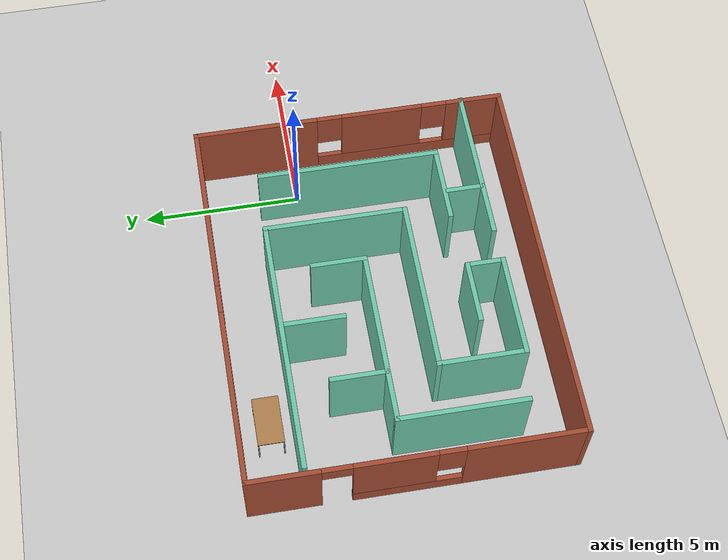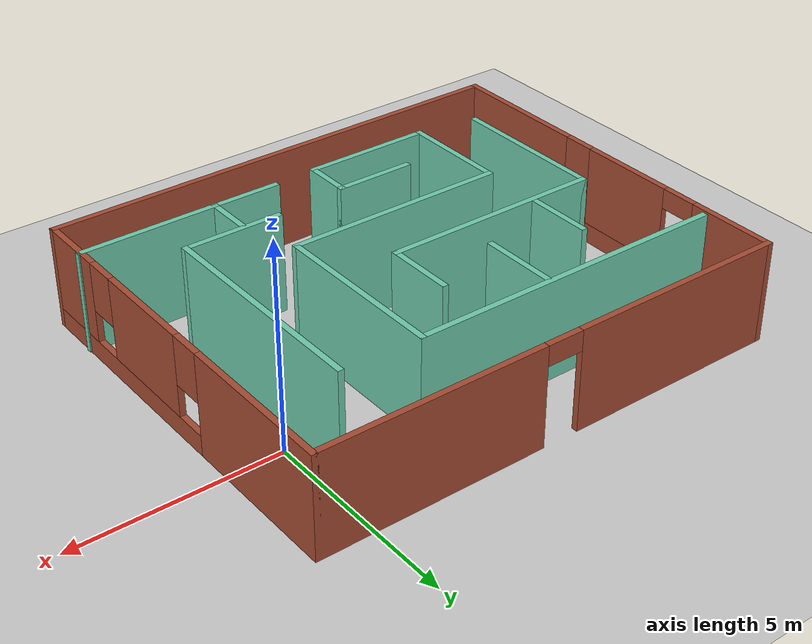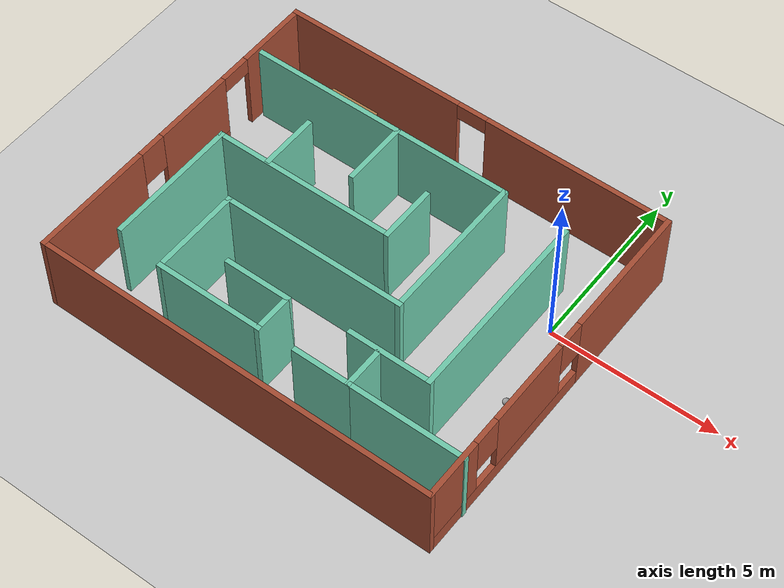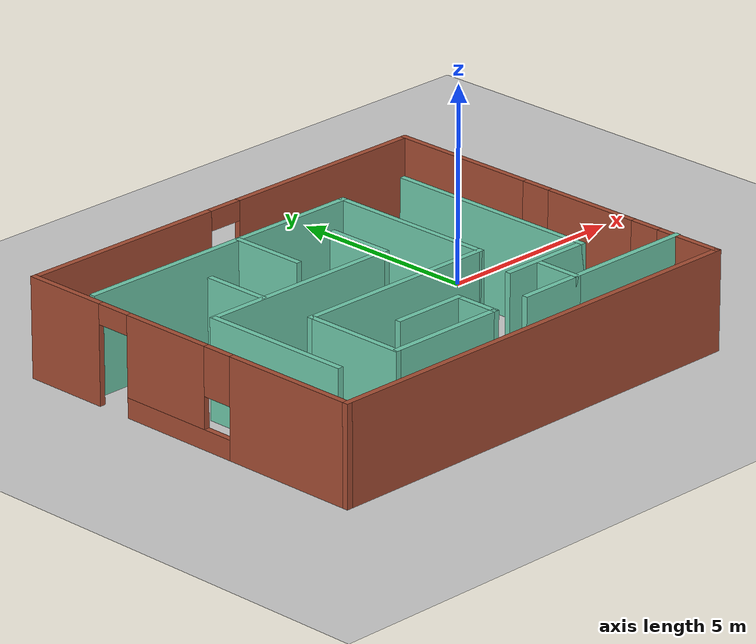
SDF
<sdf version="1.6">
 <world name="default">
  <light name="sun" type="directional">
   <pose>0 0 10 0 -0 0</pose>
   <diffuse>0.8 0.8 0.8 1</diffuse>
   <specular>0.2 0.2 0.2 1</specular>
   <attenuation>
    <range>1000</range>
    <constant>0.9</constant>
    <linear>0.01</linear>
    <quadratic>0.001</quadratic>
   </attenuation>
   <direction>-0.5 0.1 -0.9</direction>
  </light>
  <model name="ground_plane">
   <static>1</static>
   <link name="link">
    <collision name="collision">
     <geometry><plane><normal>0 0 1</normal><size>100 100</size></plane></geometry>
     <surface>
      <contact><collide_bitmask>65535</collide_bitmask></contact>
      <friction><ode><mu>100</mu><mu2>50</mu2></ode></friction>
     </surface>
    </collision>
    <visual name="visual">
     <cast_shadows>0</cast_shadows>
     <geometry><plane><normal>0 0 1</normal><size>100 100</size></plane></geometry>
     <material>
      <script><uri>file://media/materials/scripts/gazebo.material</uri><name>Gazebo/Grey</name></script>
     </material>
    </visual>
   </link>
  </model>
  <gravity>0 0 -9.8</gravity>
  <magnetic_field>6e-06 2.3e-05 -4.2e-05</magnetic_field>
  <atmosphere type="adiabatic"/>
  <physics name="default_physics" default="0" type="ode">
   <max_step_size>0.001</max_step_size>
   <real_time_factor>1</real_time_factor>
   <real_time_update_rate>1000</real_time_update_rate>
  </physics>
  <scene><ambient>0.4 0.4 0.4 1</ambient><background>0.7 0.7 0.7 1</background><shadows>1</shadows></scene>
  <spherical_coordinates>
   <surface_model>EARTH_WGS84</surface_model>
   <latitude_deg>0</latitude_deg>
   <longitude_deg>0</longitude_deg>
   <elevation>0</elevation>
   <heading_deg>0</heading_deg>
  </spherical_coordinates>
  <model name="pranav_world_1">
   <pose>-4.61129 -1.92534 0 0 -0 0</pose>
   <link name="Wall_21">
    <pose>-0.014217 4.925 0 0 -0 0</pose>
    <visual name="Wall_21_Visual_0">
     <pose>-3.25163 0 1.25 0 -0 0</pose>
     <geometry><box><size>5.49674 0.15 2.5</size></box></geometry>
     <material>
      <script><uri>file://media/materials/scripts/gazebo.material</uri><name>Gazebo/Bricks</name></script>
      <ambient>1 1 1 1</ambient>
     </material>
     <meta><layer>0</layer></meta>
    </visual>
    <collision name="Wall_21_Collision_0">
     <geometry><box><size>5.49674 0.15 2.5</size></box></geometry>
     <pose>-3.25163 0 1.25 0 -0 0</pose>
    </collision>
    <visual name="Wall_21_Visual_1">
     <pose>3.19837 0 1.25 0 -0 0</pose>
     <geometry><box><size>5.60326 0.15 2.5</size></box></geometry>
     <material>
      <script><uri>file://media/materials/scripts/gazebo.material</uri><name>Gazebo/Bricks</name></script>
      <ambient>1 1 1 1</ambient>
     </material>
     <meta><layer>0</layer></meta>
    </visual>
    <collision name="Wall_21_Collision_1">
     <geometry><box><size>5.60326 0.15 2.5</size></box></geometry>
     <pose>3.19837 0 1.25 0 -0 0</pose>
    </collision>
    <visual name="Wall_21_Visual_2">
     <pose>-0.053263 0 2.25 0 -0 0</pose>
     <geometry><box><size>0.9 0.15 0.5</size></box></geometry>
     <material>
      <script><uri>file://media/materials/scripts/gazebo.material</uri><name>Gazebo/Bricks</name></script>
      <ambient>1 1 1 1</ambient>
     </material>
     <meta><layer>0</layer></meta>
    </visual>
    <collision name="Wall_21_Collision_2">
     <geometry><box><size>0.9 0.15 0.5</size></box></geometry>
     <pose>-0.053263 0 2.25 0 -0 0</pose>
    </collision>
   </link>
   <link name="Wall_24">
    <pose>5.91078 0 0 0 0 -1.5708</pose>
    <visual name="Wall_24_Visual_0">
     <pose>-3.012 0 1.25 0 -0 0</pose>
     <geometry><box><size>3.976 0.15 2.5</size></box></geometry>
     <material>
      <script><uri>file://media/materials/scripts/gazebo.material</uri><name>Gazebo/Bricks</name></script>
      <ambient>1 1 1 1</ambient>
     </material>
     <meta><layer>0</layer></meta>
    </visual>
    <collision name="Wall_24_Collision_0">
     <geometry><box><size>3.976 0.15 2.5</size></box></geometry>
     <pose>-3.012 0 1.25 0 -0 0</pose>
    </collision>
    <visual name="Wall_24_Visual_1">
     <pose>1.988 0 0.25 0 -0 0</pose>
     <geometry><box><size>6.024 0.15 0.5</size></box></geometry>
     <material>
      <script><uri>file://media/materials/scripts/gazebo.material</uri><name>Gazebo/Bricks</name></script>
      <ambient>1 1 1 1</ambient>
     </material>
     <meta><layer>0</layer></meta>
    </visual>
    <collision name="Wall_24_Collision_1">
     <geometry><box><size>6.024 0.15 0.5</size></box></geometry>
     <pose>1.988 0 0.25 0 -0 0</pose>
    </collision>
    <visual name="Wall_24_Visual_2">
     <pose>1.07835 0 1.5 0 -0 0</pose>
     <geometry><box><size>2.6047 0.15 2</size></box></geometry>
     <material>
      <script><uri>file://media/materials/scripts/gazebo.material</uri><name>Gazebo/Bricks</name></script>
      <ambient>1 1 1 1</ambient>
     </material>
     <meta><layer>0</layer></meta>
    </visual>
    <collision name="Wall_24_Collision_2">
     <geometry><box><size>2.6047 0.15 2</size></box></geometry>
     <pose>1.07835 0 1.5 0 -0 0</pose>
    </collision>
    <visual name="Wall_24_Visual_3">
     <pose>4.09035 0 1.5 0 -0 0</pose>
     <geometry><box><size>1.8193 0.15 2</size></box></geometry>
     <material>
      <script><uri>file://media/materials/scripts/gazebo.material</uri><name>Gazebo/Bricks</name></script>
      <ambient>1 1 1 1</ambient>
     </material>
     <meta><layer>0</layer></meta>
    </visual>
    <collision name="Wall_24_Collision_3">
     <geometry><box><size>1.8193 0.15 2</size></box></geometry>
     <pose>4.09035 0 1.5 0 -0 0</pose>
    </collision>
    <visual name="Wall_24_Visual_4">
     <pose>-0.624003 0 1.9 0 -0 0</pose>
     <geometry><box><size>0.8 0.15 1.2</size></box></geometry>
     <material>
      <script><uri>file://media/materials/scripts/gazebo.material</uri><name>Gazebo/Bricks</name></script>
      <ambient>1 1 1 1</ambient>
     </material>
     <meta><layer>0</layer></meta>
    </visual>
    <collision name="Wall_24_Collision_4">
     <geometry><box><size>0.8 0.15 1.2</size></box></geometry>
     <pose>-0.624003 0 1.9 0 -0 0</pose>
    </collision>
    <visual name="Wall_24_Visual_5">
     <pose>2.7807 0 1.9 0 -0 0</pose>
     <geometry><box><size>0.8 0.15 1.2</size></box></geometry>
     <material>
      <script><uri>file://media/materials/scripts/gazebo.material</uri><name>Gazebo/Bricks</name></script>
      <ambient>1 1 1 1</ambient>
     </material>
     <meta><layer>0</layer></meta>
    </visual>
    <collision name="Wall_24_Collision_5">
     <geometry><box><size>0.8 0.15 1.2</size></box></geometry>
     <pose>2.7807 0 1.9 0 -0 0</pose>
    </collision>
   </link>
   <link name="Wall_25">
    <collision name="Wall_25_Collision">
     <geometry><box><size>12 0.15 2.5</size></box></geometry>
     <pose>0 0 1.25 0 -0 0</pose>
    </collision>
    <visual name="Wall_25_Visual">
     <pose>0 0 1.25 0 -0 0</pose>
     <geometry><box><size>12 0.15 2.5</size></box></geometry>
     <material>
      <script><uri>file://media/materials/scripts/gazebo.material</uri><name>Gazebo/Bricks</name></script>
      <ambient>1 1 1 1</ambient>
     </material>
     <meta><layer>0</layer></meta>
    </visual>
    <pose>-0.014217 -4.925 0 0 -0 3.14159</pose>
   </link>
   <link name="Wall_26">
    <pose>-5.93922 0 0 0 -0 1.5708</pose>
    <visual name="Wall_26_Visual_0">
     <pose>-3.18759 0 1.25 0 -0 0</pose>
     <geometry><box><size>3.62482 0.15 2.5</size></box></geometry>
     <material>
      <script><uri>file://media/materials/scripts/gazebo.material</uri><name>Gazebo/Bricks</name></script>
      <ambient>1 1 1 1</ambient>
     </material>
     <meta><layer>0</layer></meta>
    </visual>
    <collision name="Wall_26_Collision_0">
     <geometry><box><size>3.62482 0.15 2.5</size></box></geometry>
     <pose>-3.18759 0 1.25 0 -0 0</pose>
    </collision>
    <visual name="Wall_26_Visual_1">
     <pose>3.88818 0 1.25 0 -0 0</pose>
     <geometry><box><size>2.22365 0.15 2.5</size></box></geometry>
     <material>
      <script><uri>file://media/materials/scripts/gazebo.material</uri><name>Gazebo/Bricks</name></script>
      <ambient>1 1 1 1</ambient>
     </material>
     <meta><layer>0</layer></meta>
    </visual>
    <collision name="Wall_26_Collision_1">
     <geometry><box><size>2.22365 0.15 2.5</size></box></geometry>
     <pose>3.88818 0 1.25 0 -0 0</pose>
    </collision>
    <visual name="Wall_26_Visual_2">
     <pose>0.250589 0 0.25 0 -0 0</pose>
     <geometry><box><size>3.25153 0.15 0.5</size></box></geometry>
     <material>
      <script><uri>file://media/materials/scripts/gazebo.material</uri><name>Gazebo/Bricks</name></script>
      <ambient>1 1 1 1</ambient>
     </material>
     <meta><layer>0</layer></meta>
    </visual>
    <collision name="Wall_26_Collision_2">
     <geometry><box><size>3.25153 0.15 0.5</size></box></geometry>
     <pose>0.250589 0 0.25 0 -0 0</pose>
    </collision>
    <visual name="Wall_26_Visual_3">
     <pose>0.650589 0 1.5 0 -0 0</pose>
     <geometry><box><size>2.45153 0.15 2</size></box></geometry>
     <material>
      <script><uri>file://media/materials/scripts/gazebo.material</uri><name>Gazebo/Bricks</name></script>
      <ambient>1 1 1 1</ambient>
     </material>
     <meta><layer>0</layer></meta>
    </visual>
    <collision name="Wall_26_Collision_3">
     <geometry><box><size>2.45153 0.15 2</size></box></geometry>
     <pose>0.650589 0 1.5 0 -0 0</pose>
    </collision>
    <visual name="Wall_26_Visual_4">
     <pose>-0.975175 0 1.9 0 -0 0</pose>
     <geometry><box><size>0.8 0.15 1.2</size></box></geometry>
     <material>
      <script><uri>file://media/materials/scripts/gazebo.material</uri><name>Gazebo/Bricks</name></script>
      <ambient>1 1 1 1</ambient>
     </material>
     <meta><layer>0</layer></meta>
    </visual>
    <collision name="Wall_26_Collision_4">
     <geometry><box><size>0.8 0.15 1.2</size></box></geometry>
     <pose>-0.975175 0 1.9 0 -0 0</pose>
    </collision>
    <visual name="Wall_26_Visual_5">
     <pose>2.32635 0 2.25 0 -0 0</pose>
     <geometry><box><size>0.9 0.15 0.5</size></box></geometry>
     <material>
      <script><uri>file://media/materials/scripts/gazebo.material</uri><name>Gazebo/Bricks</name></script>
      <ambient>1 1 1 1</ambient>
     </material>
     <meta><layer>0</layer></meta>
    </visual>
    <collision name="Wall_26_Collision_5">
     <geometry><box><size>0.9 0.15 0.5</size></box></geometry>
     <pose>2.32635 0 2.25 0 -0 0</pose>
    </collision>
   </link>
   <link name="Wall_28">
    <collision name="Wall_28_Collision">
     <geometry><box><size>8 0.15 2.5</size></box></geometry>
     <pose>0 0 1.25 0 -0 0</pose>
    </collision>
    <visual name="Wall_28_Visual">
     <pose>0 0 1.25 0 -0 0</pose>
     <geometry><box><size>8 0.15 2.5</size></box></geometry>
     <material>
      <script><uri>file://media/materials/scripts/gazebo.material</uri><name>Gazebo/Grey</name></script>
      <ambient>0.435294 0.796078 0.67451 1</ambient>
     </material>
     <meta><layer>0</layer></meta>
    </visual>
    <pose>-1.79119 3.22912 0 0 -0 0</pose>
   </link>
   <link name="Wall_29">
    <collision name="Wall_29_Collision">
     <geometry><box><size>4.5 0.15 2.5</size></box></geometry>
     <pose>0 0 1.25 0 -0 0</pose>
    </collision>
    <visual name="Wall_29_Visual">
     <pose>0 0 1.25 0 -0 0</pose>
     <geometry><box><size>4.5 0.15 2.5</size></box></geometry>
     <material>
      <script><uri>file://media/materials/scripts/gazebo.material</uri><name>Gazebo/Grey</name></script>
      <ambient>0.435294 0.796078 0.67451 1</ambient>
     </material>
     <meta><layer>0</layer></meta>
    </visual>
    <pose>2.13381 1.05411 0 0 0 -1.5708</pose>
   </link>
   <link name="Wall_30">
    <collision name="Wall_30_Collision">
     <geometry><box><size>5.5 0.15 2.5</size></box></geometry>
     <pose>0 0 1.25 0 -0 0</pose>
    </collision>
    <visual name="Wall_30_Visual">
     <pose>0 0 1.25 0 -0 0</pose>
     <geometry><box><size>5.5 0.15 2.5</size></box></geometry>
     <material>
      <script><uri>file://media/materials/scripts/gazebo.material</uri><name>Gazebo/Grey</name></script>
      <ambient>0.435294 0.796078 0.67451 1</ambient>
     </material>
     <meta><layer>0</layer></meta>
    </visual>
    <pose>-0.541188 -1.12088 0 0 -0 3.14159</pose>
   </link>
   <link name="Wall_31">
    <collision name="Wall_31_Collision">
     <geometry><box><size>2.75 0.15 2.5</size></box></geometry>
     <pose>0 0 1.25 0 -0 0</pose>
    </collision>
    <visual name="Wall_31_Visual">
     <pose>0 0 1.25 0 -0 0</pose>
     <geometry><box><size>2.75 0.15 2.5</size></box></geometry>
     <material>
      <script><uri>file://media/materials/scripts/gazebo.material</uri><name>Gazebo/Grey</name></script>
      <ambient>0.435294 0.796078 0.67451 1</ambient>
     </material>
     <meta><layer>0</layer></meta>
    </visual>
    <pose>-3.21619 -2.42089 0 0 0 -1.5708</pose>
   </link>
   <link name="Wall_32">
    <collision name="Wall_32_Collision">
     <geometry><box><size>3.25 0.15 2.5</size></box></geometry>
     <pose>0 0 1.25 0 -0 0</pose>
    </collision>
    <visual name="Wall_32_Visual">
     <pose>0 0 1.25 0 -0 0</pose>
     <geometry><box><size>3.25 0.15 2.5</size></box></geometry>
     <material>
      <script><uri>file://media/materials/scripts/gazebo.material</uri><name>Gazebo/Grey</name></script>
      <ambient>0.435294 0.796078 0.67451 1</ambient>
     </material>
     <meta><layer>0</layer></meta>
    </visual>
    <pose>-1.66619 -3.72088 0 0 -0 0</pose>
   </link>
   <link name="Wall_33">
    <collision name="Wall_33_Collision">
     <geometry><box><size>1.25 0.15 2.5</size></box></geometry>
     <pose>0 0 1.25 0 -0 0</pose>
    </collision>
    <visual name="Wall_33_Visual">
     <pose>0 0 1.25 0 -0 0</pose>
     <geometry><box><size>1.25 0.15 2.5</size></box></geometry>
     <material>
      <script><uri>file://media/materials/scripts/gazebo.material</uri><name>Gazebo/Grey</name></script>
      <ambient>0.435294 0.796078 0.67451 1</ambient>
     </material>
     <meta><layer>0</layer></meta>
    </visual>
    <pose>-0.116188 -3.17089 0 0 -0 1.5708</pose>
   </link>
   <link name="Wall_34">
    <collision name="Wall_34_Collision">
     <geometry><box><size>2 0.15 2.5</size></box></geometry>
     <pose>0 0 1.25 0 -0 0</pose>
    </collision>
    <visual name="Wall_34_Visual">
     <pose>0 0 1.25 0 -0 0</pose>
     <geometry><box><size>2 0.15 2.5</size></box></geometry>
     <material>
      <script><uri>file://media/materials/scripts/gazebo.material</uri><name>Gazebo/Grey</name></script>
      <ambient>0.435294 0.796078 0.67451 1</ambient>
     </material>
     <meta><layer>0</layer></meta>
    </visual>
    <pose>-1.04119 -2.62088 0 0 -0 3.14159</pose>
   </link>
   <link name="Wall_36">
    <collision name="Wall_36_Collision">
     <geometry><box><size>5.75 0.15 2.5</size></box></geometry>
     <pose>0 0 1.25 0 -0 0</pose>
    </collision>
    <visual name="Wall_36_Visual">
     <pose>0 0 1.25 0 -0 0</pose>
     <geometry><box><size>5.75 0.15 2.5</size></box></geometry>
     <material>
      <script><uri>file://media/materials/scripts/gazebo.material</uri><name>Gazebo/Grey</name></script>
      <ambient>0.435294 0.796078 0.67451 1</ambient>
     </material>
     <meta><layer>0</layer></meta>
    </visual>
    <pose>4.05943 0.325942 0 0 0 -1.5708</pose>
   </link>
   <link name="Wall_37">
    <collision name="Wall_37_Collision">
     <geometry><box><size>2.5 0.15 2.5</size></box></geometry>
     <pose>0 0 1.25 0 -0 0</pose>
    </collision>
    <visual name="Wall_37_Visual">
     <pose>0 0 1.25 0 -0 0</pose>
     <geometry><box><size>2.5 0.15 2.5</size></box></geometry>
     <material>
      <script><uri>file://media/materials/scripts/gazebo.material</uri><name>Gazebo/Grey</name></script>
      <ambient>0.435294 0.796078 0.67451 1</ambient>
     </material>
     <meta><layer>0</layer></meta>
    </visual>
    <pose>2.88443 -2.47406 0 0 -0 3.14159</pose>
   </link>
   <link name="Wall_39">
    <collision name="Wall_39_Collision">
     <geometry><box><size>1.25 0.15 2.5</size></box></geometry>
     <pose>0 0 1.25 0 -0 0</pose>
    </collision>
    <visual name="Wall_39_Visual">
     <pose>0 0 1.25 0 -0 0</pose>
     <geometry><box><size>1.25 0.15 2.5</size></box></geometry>
     <material>
      <script><uri>file://media/materials/scripts/gazebo.material</uri><name>Gazebo/Grey</name></script>
      <ambient>0.435294 0.796078 0.67451 1</ambient>
     </material>
     <meta><layer>0</layer></meta>
    </visual>
    <pose>2.58922 -3.12435 0 0 0 -1.5708</pose>
   </link>
   <link name="Wall_40">
    <collision name="Wall_40_Collision">
     <geometry><box><size>3.5 0.15 2.5</size></box></geometry>
     <pose>0 0 1.25 0 -0 0</pose>
    </collision>
    <visual name="Wall_40_Visual">
     <pose>0 0 1.25 0 -0 0</pose>
     <geometry><box><size>3.5 0.15 2.5</size></box></geometry>
     <material>
      <script><uri>file://media/materials/scripts/gazebo.material</uri><name>Gazebo/Grey</name></script>
      <ambient>0.435294 0.796078 0.67451 1</ambient>
     </material>
     <meta><layer>0</layer></meta>
    </visual>
    <pose>4.26422 -3.67435 0 0 -0 0</pose>
   </link>
   <link name="Wall_42">
    <collision name="Wall_42_Collision">
     <geometry><box><size>1.75 0.15 2.5</size></box></geometry>
     <pose>0 0 1.25 0 -0 0</pose>
    </collision>
    <visual name="Wall_42_Visual">
     <pose>0 0 1.25 0 -0 0</pose>
     <geometry><box><size>1.75 0.15 2.5</size></box></geometry>
     <material>
      <script><uri>file://media/materials/scripts/gazebo.material</uri><name>Gazebo/Grey</name></script>
      <ambient>0.435294 0.796078 0.67451 1</ambient>
     </material>
     <meta><layer>0</layer></meta>
    </visual>
    <pose>1.78922 -3.67435 0 0 -0 3.14159</pose>
   </link>
   <link name="Wall_44">
    <collision name="Wall_44_Collision">
     <geometry><box><size>4 0.15 2.5</size></box></geometry>
     <pose>0 0 1.25 0 -0 0</pose>
    </collision>
    <visual name="Wall_44_Visual">
     <pose>0 0 1.25 0 -0 0</pose>
     <geometry><box><size>4 0.15 2.5</size></box></geometry>
     <material>
      <script><uri>file://media/materials/scripts/gazebo.material</uri><name>Gazebo/Grey</name></script>
      <ambient>0.435294 0.796078 0.67451 1</ambient>
     </material>
     <meta><layer>0</layer></meta>
    </visual>
    <pose>-4.73605 -1.52632 0 0 -0 1.5708</pose>
   </link>
   <link name="Wall_45">
    <collision name="Wall_45_Collision">
     <geometry><box><size>5.5 0.15 2.5</size></box></geometry>
     <pose>0 0 1.25 0 -0 0</pose>
    </collision>
    <visual name="Wall_45_Visual">
     <pose>0 0 1.25 0 -0 0</pose>
     <geometry><box><size>5.5 0.15 2.5</size></box></geometry>
     <material>
      <script><uri>file://media/materials/scripts/gazebo.material</uri><name>Gazebo/Grey</name></script>
      <ambient>0.435294 0.796078 0.67451 1</ambient>
     </material>
     <meta><layer>0</layer></meta>
    </visual>
    <pose>-2.06105 0.398679 0 0 -0 0</pose>
   </link>
   <link name="Wall_49">
    <collision name="Wall_49_Collision">
     <geometry><box><size>1.75 0.15 2.5</size></box></geometry>
     <pose>0 0 1.25 0 -0 0</pose>
    </collision>
    <visual name="Wall_49_Visual">
     <pose>0 0 1.25 0 -0 0</pose>
     <geometry><box><size>1.75 0.15 2.5</size></box></geometry>
     <material>
      <script><uri>file://media/materials/scripts/gazebo.material</uri><name>Gazebo/Grey</name></script>
      <ambient>0.435294 0.796078 0.67451 1</ambient>
     </material>
     <meta><layer>0</layer></meta>
    </visual>
    <pose>-3.21425 1.24263 0 0 0 -1.5708</pose>
   </link>
   <link name="Wall_51">
    <collision name="Wall_51_Collision">
     <geometry><box><size>2 0.15 2.5</size></box></geometry>
     <pose>0 0 1.25 0 -0 0</pose>
    </collision>
    <visual name="Wall_51_Visual">
     <pose>0 0 1.25 0 -0 0</pose>
     <geometry><box><size>2 0.15 2.5</size></box></geometry>
     <material>
      <script><uri>file://media/materials/scripts/gazebo.material</uri><name>Gazebo/Grey</name></script>
      <ambient>0.435294 0.796078 0.67451 1</ambient>
     </material>
     <meta><layer>0</layer></meta>
    </visual>
    <pose>-1.22817 2.27832 0 0 0 -1.5708</pose>
   </link>
   <link name="Wall_53">
    <collision name="Wall_53_Collision">
     <geometry><box><size>1.75 0.15 2.5</size></box></geometry>
     <pose>0 0 1.25 0 -0 0</pose>
    </collision>
    <visual name="Wall_53_Visual">
     <pose>0 0 1.25 0 -0 0</pose>
     <geometry><box><size>1.75 0.15 2.5</size></box></geometry>
     <material>
      <script><uri>file://media/materials/scripts/gazebo.material</uri><name>Gazebo/Grey</name></script>
      <ambient>0.435294 0.796078 0.67451 1</ambient>
     </material>
     <meta><layer>0</layer></meta>
    </visual>
    <pose>0.613953 1.19868 0 0 -0 1.5708</pose>
   </link>
   <static>1</static>
  </model>
  <model name="my_ball">
   <link name="link">
    <inertial>
     <mass>1</mass>
     <inertia><ixx>0.1</ixx><ixy>0</ixy><ixz>0</ixz><iyy>0.1</iyy><iyz>0</iyz><izz>0.1</izz></inertia>
    </inertial>
    <visual name="visual">
     <geometry><sphere><radius>0.1</radius></sphere></geometry>
     <material>
      <script><name>Gazebo/Grey</name><uri>file://media/materials/scripts/gazebo.material</uri></script>
      <shader type="pixel"><normal_map>__default__</normal_map></shader>
      <ambient>1 1 1 1</ambient>
      <diffuse>1 1 1 1</diffuse>
      <specular>1 1 1 1</specular>
      <emissive>1 1 1 1</emissive>
     </material>
    </visual>
    <collision name="collision">
     <geometry><sphere><radius>0.1</radius></sphere></geometry>
     <surface>
      <friction>
       <ode><mu>1</mu><mu2>1</mu2><fdir1>0 0 0</fdir1><slip1>0</slip1><slip2>0</slip2></ode>
       <torsional>
        <coefficient>1</coefficient>
        <patch_radius>0</patch_radius>
        <surface_radius>0</surface_radius>
        <use_patch_radius>1</use_patch_radius>
        <ode><slip>0</slip></ode>
       </torsional>
      </friction>
      <bounce><restitution_coefficient>0</restitution_coefficient><threshold>1e+06</threshold></bounce>
      <contact>
       <collide_without_contact>0</collide_without_contact>
       <collide_without_contact_bitmask>1</collide_without_contact_bitmask>
       <collide_bitmask>1</collide_bitmask>
       <ode>
        <soft_cfm>0</soft_cfm>
        <soft_erp>0.2</soft_erp>
        <kp>1e+13</kp>
        <kd>1</kd>
        <max_vel>0.01</max_vel>
        <min_depth>0</min_depth>
       </ode>
       <bullet>
        <split_impulse>1</split_impulse>
        <split_impulse_penetration_threshold>-0.01</split_impulse_penetration_threshold>
        <soft_cfm>0</soft_cfm>
        <soft_erp>0.2</soft_erp>
        <kp>1e+13</kp>
        <kd>1</kd>
       </bullet>
      </contact>
     </surface>
    </collision>
   </link>
   <static>0</static>
   <pose>0.374081 -2.42973 0.1 0 -0 0</pose>
  </model>
  <model name="table">
   <static>1</static>
   <link name="link">
    <collision name="surface">
     <pose>0 0 1 0 -0 0</pose>
     <geometry><box><size>1.5 0.8 0.03</size></box></geometry>
     <surface><friction><ode><mu>0.6</mu><mu2>0.6</mu2></ode></friction></surface>
    </collision>
    <visual name="visual1">
     <pose>0 0 1 0 -0 0</pose>
     <geometry><box><size>1.5 0.8 0.03</size></box></geometry>
     <material>
      <script><uri>file://media/materials/scripts/gazebo.material</uri><name>Gazebo/Wood</name></script>
     </material>
    </visual>
    <collision name="front_left_leg">
     <pose>0.68 0.38 0.5 0 -0 0</pose>
     <geometry><cylinder><radius>0.02</radius><length>1</length></cylinder></geometry>
    </collision>
    <visual name="front_left_leg">
     <pose>0.68 0.38 0.5 0 -0 0</pose>
     <geometry><cylinder><radius>0.02</radius><length>1</length></cylinder></geometry>
     <material>
      <script><uri>file://media/materials/scripts/gazebo.material</uri><name>Gazebo/Grey</name></script>
     </material>
    </visual>
    <collision name="front_right_leg">
     <pose>0.68 -0.38 0.5 0 -0 0</pose>
     <geometry><cylinder><radius>0.02</radius><length>1</length></cylinder></geometry>
    </collision>
    <visual name="front_right_leg">
     <pose>0.68 -0.38 0.5 0 -0 0</pose>
     <geometry><cylinder><radius>0.02</radius><length>1</length></cylinder></geometry>
     <material>
      <script><uri>file://media/materials/scripts/gazebo.material</uri><name>Gazebo/Grey</name></script>
     </material>
    </visual>
    <collision name="back_right_leg">
     <pose>-0.68 -0.38 0.5 0 -0 0</pose>
     <geometry><cylinder><radius>0.02</radius><length>1</length></cylinder></geometry>
    </collision>
    <visual name="back_right_leg">
     <pose>-0.68 -0.38 0.5 0 -0 0</pose>
     <geometry><cylinder><radius>0.02</radius><length>1</length></cylinder></geometry>
     <material>
      <script><uri>file://media/materials/scripts/gazebo.material</uri><name>Gazebo/Grey</name></script>
     </material>
    </visual>
    <collision name="back_left_leg">
     <pose>-0.68 0.38 0.5 0 -0 0</pose>
     <geometry><cylinder><radius>0.02</radius><length>1</length></cylinder></geometry>
    </collision>
    <visual name="back_left_leg">
     <pose>-0.68 0.38 0.5 0 -0 0</pose>
     <geometry><cylinder><radius>0.02</radius><length>1</length></cylinder></geometry>
     <material>
      <script><uri>file://media/materials/scripts/gazebo.material</uri><name>Gazebo/Grey</name></script>
     </material>
    </visual>
   </link>
   <pose>-8.14544 2.07787 0 0 -0 0</pose>
  </model>
 </world>
</sdf>
